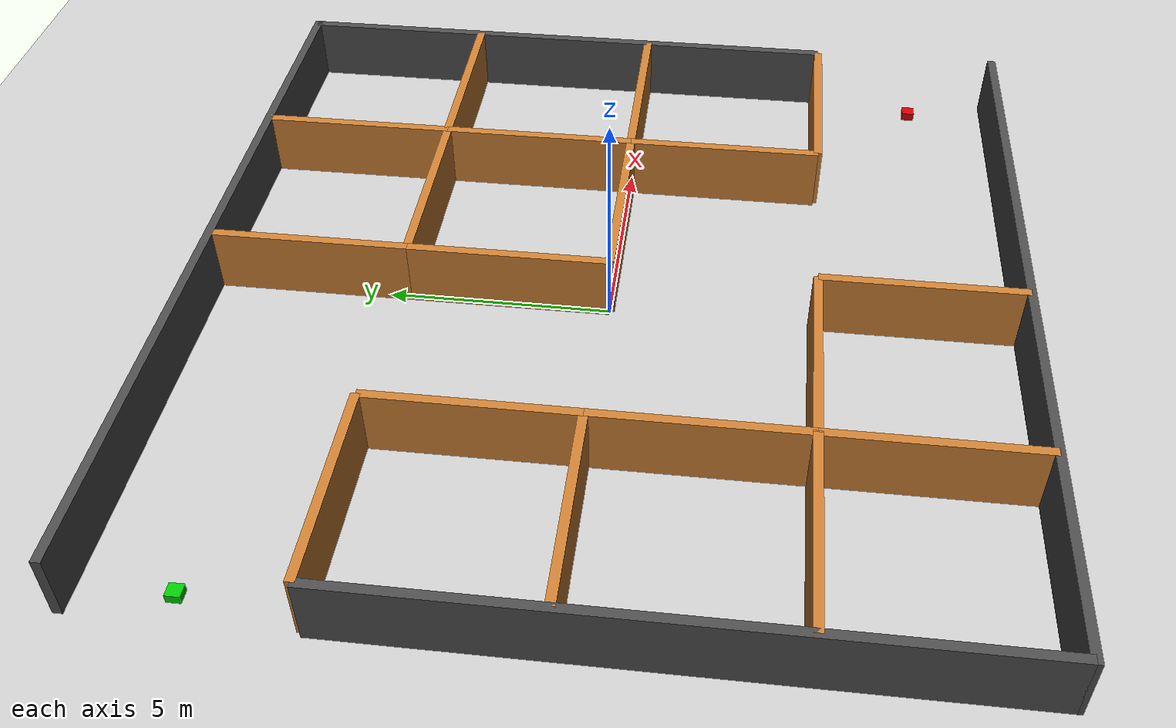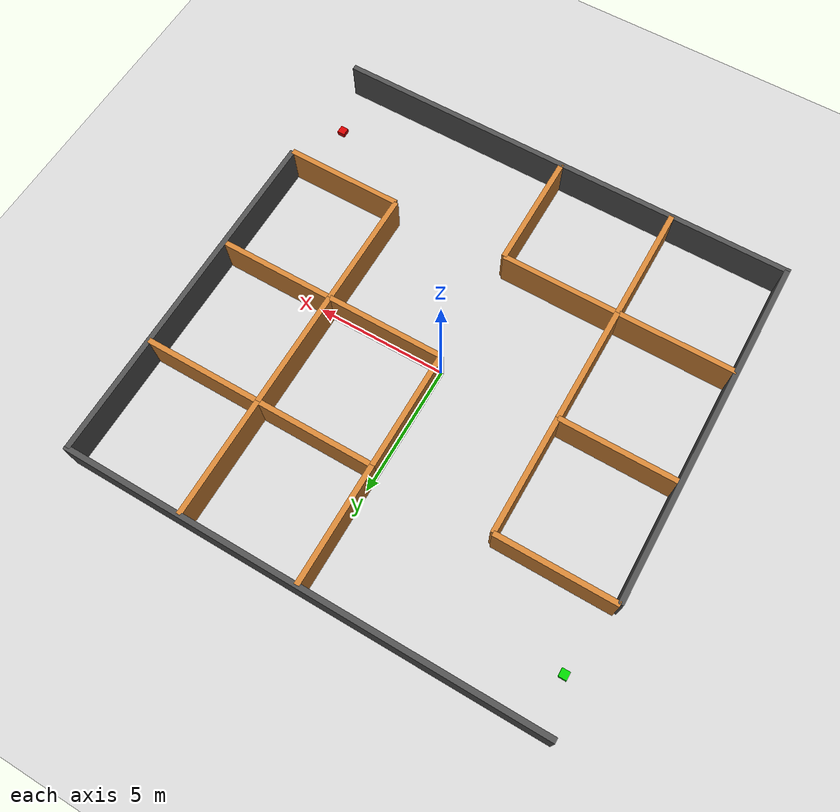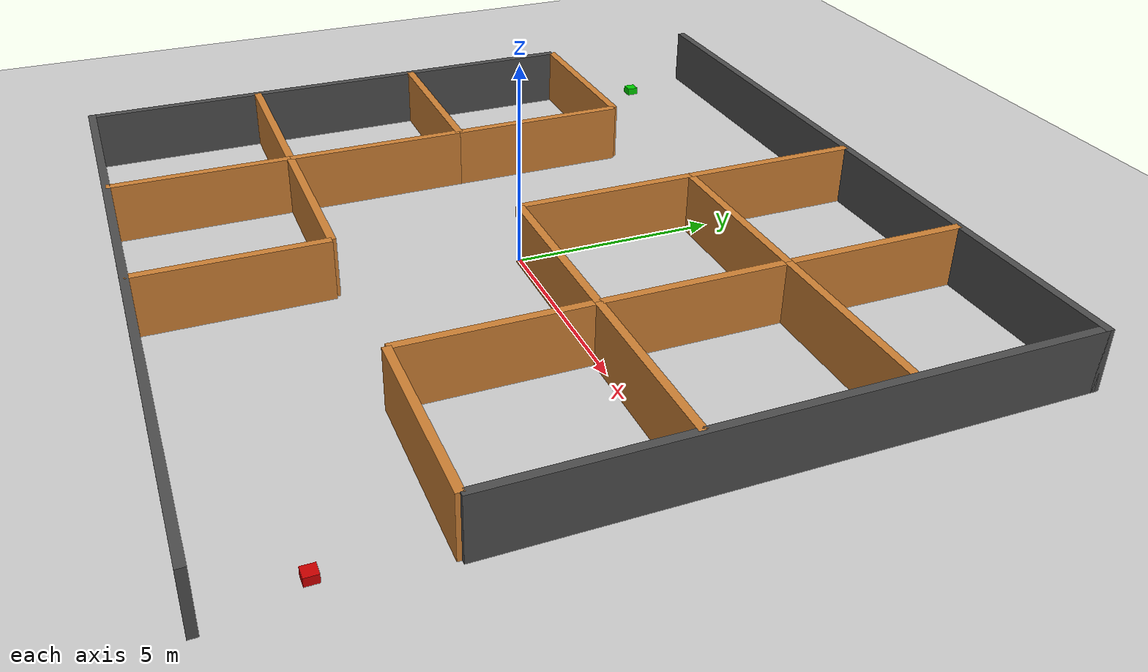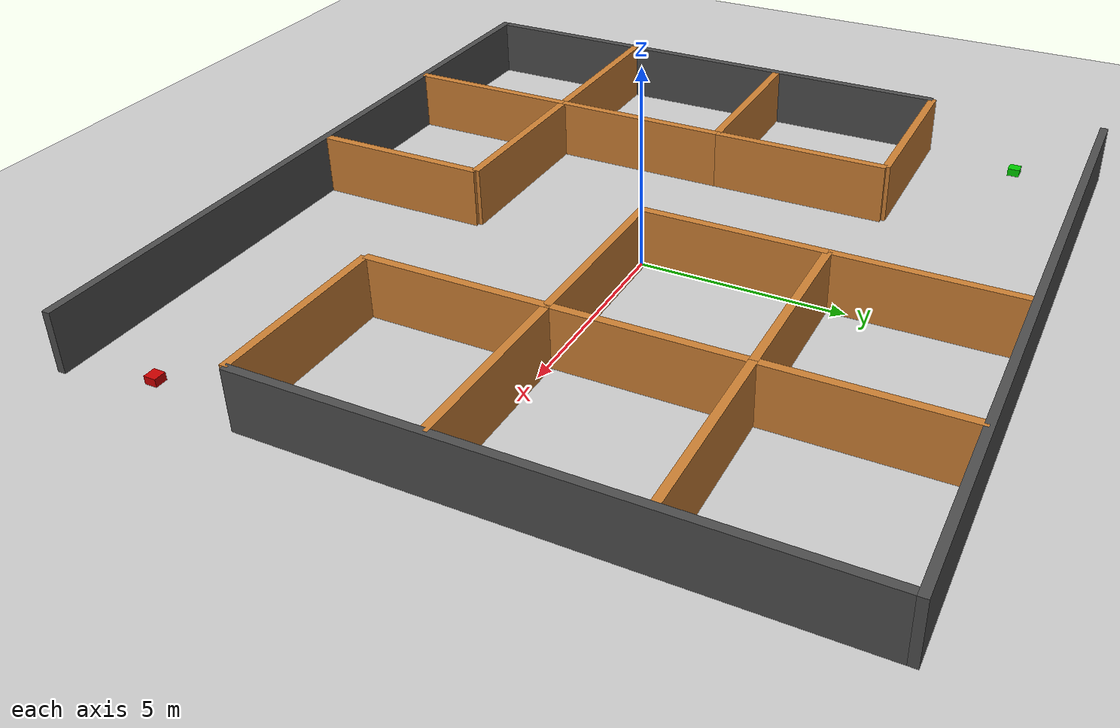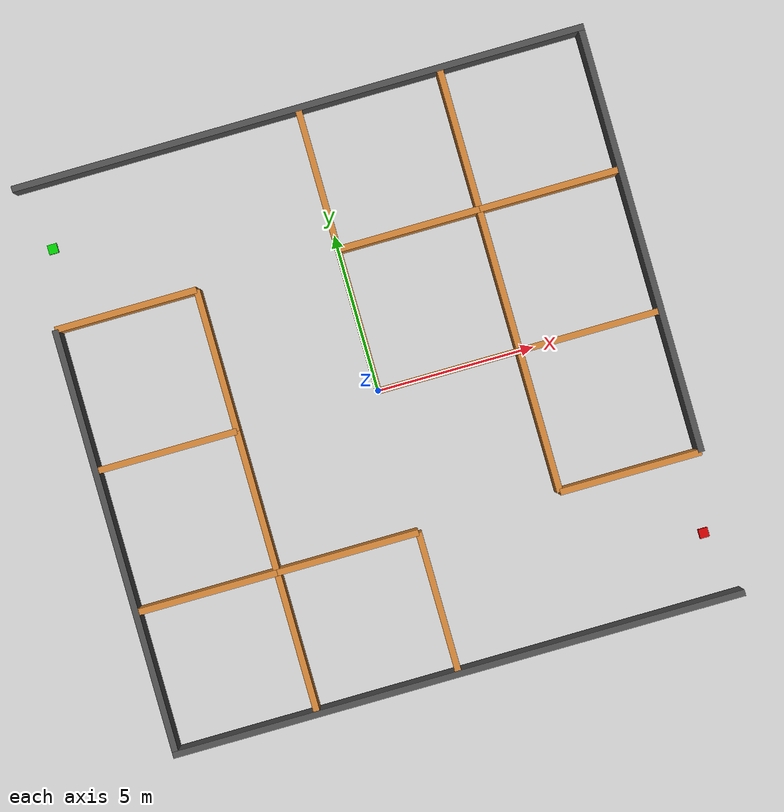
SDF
<?xml version="1.0" ?>
<sdf version="1.6">
  <world name="maze_world">

    <!-- ══════════════════  PHYSICS  ══════════════════ -->
    <physics name="default_physics" default="true" type="ode">
      <gravity>0 0 -9.8</gravity>
      <ode>
        <solver>
          <type>quick</type>
          <iters>50</iters>
          <sor>1.3</sor>
        </solver>
        <constraints>
          <cfm>0.0</cfm>
          <erp>0.2</erp>
          <contact_max_correcting_vel>100</contact_max_correcting_vel>
          <contact_surface_layer>0.001</contact_surface_layer>
        </constraints>
      </ode>
      <real_time_update_rate>1000</real_time_update_rate>
      <max_step_size>0.001</max_step_size>
    </physics>

    <!-- ══════════════════  SCENE  ════════════════════ -->
    <scene>
      <ambient>0.4 0.4 0.4 1</ambient>
      <background>0.7 0.7 0.7 1</background>
      <shadows>true</shadows>
    </scene>

    <!-- ══════════════════  SUN LIGHT  ════════════════ -->
    <light name="sun" type="directional">
      <cast_shadows>true</cast_shadows>
      <pose>0 0 10 0 -0 0</pose>
      <diffuse>0.9 0.9 0.9 1</diffuse>
      <specular>0.3 0.3 0.3 1</specular>
      <direction>-0.5 0.2 -0.9</direction>
      <attenuation>
        <range>1000</range>
        <constant>0.9</constant>
        <linear>0.01</linear>
        <quadratic>0.001</quadratic>
      </attenuation>
    </light>

    <!-- ══════════════════  GROUND PLANE  ═════════════ -->
    <model name="ground_plane">
      <static>true</static>
      <link name="link">
        <collision name="collision">
          <geometry>
            <plane>
              <normal>0 0 1</normal>
              <size>50 50</size>
            </plane>
          </geometry>
          <surface>
            <friction>
              <ode>
                <mu>1.0</mu>
                <mu2>1.0</mu2>
              </ode>
            </friction>
          </surface>
        </collision>
        <visual name="visual">
          <cast_shadows>false</cast_shadows>
          <geometry>
            <plane>
              <normal>0 0 1</normal>
              <size>50 50</size>
            </plane>
          </geometry>
          <material>
            <script>
              <uri>file://media/materials/scripts/gazebo.material</uri>
              <name>Gazebo/Grey</name>
            </script>
          </material>
        </visual>
      </link>
    </model>

    <!--                   MAZE WALLS                              -->
    <!-- Wall colours:                                             -->
    <!--   Outer boundary  →  dark grey  (0.3 0.3 0.3)            -->
    <!--   Inner walls     →  orange-tan (0.8 0.5 0.2)            -->

    <!-- ─────────────────  OUTER BOUNDARY  ─────────────────────── -->

    <!-- Top outer wall (full, y = +9) -->
    <model name="outer_wall_top">
      <static>true</static>
      <pose>0 9 0.75 0 0 0</pose>
      <link name="link">
        <collision name="col"><geometry><box><size>18.2 0.2 1.5</size></box></geometry></collision>
        <visual name="vis">
          <geometry><box><size>18.2 0.2 1.5</size></box></geometry>
          <material><ambient>0.3 0.3 0.3 1</ambient><diffuse>0.3 0.3 0.3 1</diffuse></material>
        </visual>
      </link>
    </model>

    <!-- Bottom outer wall (full, y = -9) -->
    <model name="outer_wall_bottom">
      <static>true</static>
      <pose>0 -9 0.75 0 0 0</pose>
      <link name="link">
        <collision name="col"><geometry><box><size>18.2 0.2 1.5</size></box></geometry></collision>
        <visual name="vis">
          <geometry><box><size>18.2 0.2 1.5</size></box></geometry>
          <material><ambient>0.3 0.3 0.3 1</ambient><diffuse>0.3 0.3 0.3 1</diffuse></material>
        </visual>
      </link>
    </model>

    <!-- Left outer wall – lower segment (y = -9 to y = 4.5)         -->
    <!-- Entry gap: y = 4.5 to y = 9  (top-left, 4.5 m opening)     -->
    <model name="outer_wall_left">
      <static>true</static>
      <pose>-9 -2.25 0.75 0 0 0</pose>
      <link name="link">
        <collision name="col"><geometry><box><size>0.2 13.5 1.5</size></box></geometry></collision>
        <visual name="vis">
          <geometry><box><size>0.2 13.5 1.5</size></box></geometry>
          <material><ambient>0.3 0.3 0.3 1</ambient><diffuse>0.3 0.3 0.3 1</diffuse></material>
        </visual>
      </link>
    </model>

    <!-- Right outer wall – upper segment (y = -4.5 to y = 9)        -->
    <!-- Exit gap:  y = -9 to y = -4.5  (bottom-right, 4.5 m opening) -->
    <model name="outer_wall_right">
      <static>true</static>
      <pose>9 2.25 0.75 0 0 0</pose>
      <link name="link">
        <collision name="col"><geometry><box><size>0.2 13.5 1.5</size></box></geometry></collision>
        <visual name="vis">
          <geometry><box><size>0.2 13.5 1.5</size></box></geometry>
          <material><ambient>0.3 0.3 0.3 1</ambient><diffuse>0.3 0.3 0.3 1</diffuse></material>
        </visual>
      </link>
    </model>

    <!-- ─────────────────  INNER HORIZONTAL WALLS  ──────────────── -->
    <!-- Naming: wall_hRC  =  horizontal wall below row R, at col C  -->
    <!-- Size: 4.5 m long (x), 0.2 m wide (y), 1.5 m tall (z)       -->

    <!-- Row-0/Row-1 boundary (y = 4.5) ─ blocks col 0 & cols 2-3   -->
    <model name="wall_h00">
      <static>true</static>
      <pose>-6.75 4.5 0.75 0 0 0</pose>
      <link name="link">
        <collision name="col"><geometry><box><size>4.5 0.2 1.5</size></box></geometry></collision>
        <visual name="vis">
          <geometry><box><size>4.5 0.2 1.5</size></box></geometry>
          <material><ambient>0.8 0.5 0.2 1</ambient><diffuse>0.8 0.5 0.2 1</diffuse></material>
        </visual>
      </link>
    </model>

    <model name="wall_h02">
      <static>true</static>
      <pose>2.25 4.5 0.75 0 0 0</pose>
      <link name="link">
        <collision name="col"><geometry><box><size>4.5 0.2 1.5</size></box></geometry></collision>
        <visual name="vis">
          <geometry><box><size>4.5 0.2 1.5</size></box></geometry>
          <material><ambient>0.8 0.5 0.2 1</ambient><diffuse>0.8 0.5 0.2 1</diffuse></material>
        </visual>
      </link>
    </model>

    <model name="wall_h03">
      <static>true</static>
      <pose>6.75 4.5 0.75 0 0 0</pose>
      <link name="link">
        <collision name="col"><geometry><box><size>4.5 0.2 1.5</size></box></geometry></collision>
        <visual name="vis">
          <geometry><box><size>4.5 0.2 1.5</size></box></geometry>
          <material><ambient>0.8 0.5 0.2 1</ambient><diffuse>0.8 0.5 0.2 1</diffuse></material>
        </visual>
      </link>
    </model>

    <!-- Row-1/Row-2 boundary (y = 0) ─ blocks col 0 & cols 2-3     -->
    <model name="wall_h10">
      <static>true</static>
      <pose>-6.75 0 0.75 0 0 0</pose>
      <link name="link">
        <collision name="col"><geometry><box><size>4.5 0.2 1.5</size></box></geometry></collision>
        <visual name="vis">
          <geometry><box><size>4.5 0.2 1.5</size></box></geometry>
          <material><ambient>0.8 0.5 0.2 1</ambient><diffuse>0.8 0.5 0.2 1</diffuse></material>
        </visual>
      </link>
    </model>

    <model name="wall_h12">
      <static>true</static>
      <pose>2.25 0 0.75 0 0 0</pose>
      <link name="link">
        <collision name="col"><geometry><box><size>4.5 0.2 1.5</size></box></geometry></collision>
        <visual name="vis">
          <geometry><box><size>4.5 0.2 1.5</size></box></geometry>
          <material><ambient>0.8 0.5 0.2 1</ambient><diffuse>0.8 0.5 0.2 1</diffuse></material>
        </visual>
      </link>
    </model>

    <model name="wall_h13">
      <static>true</static>
      <pose>6.75 0 0.75 0 0 0</pose>
      <link name="link">
        <collision name="col"><geometry><box><size>4.5 0.2 1.5</size></box></geometry></collision>
        <visual name="vis">
          <geometry><box><size>4.5 0.2 1.5</size></box></geometry>
          <material><ambient>0.8 0.5 0.2 1</ambient><diffuse>0.8 0.5 0.2 1</diffuse></material>
        </visual>
      </link>
    </model>

    <!-- Row-2/Row-3 boundary (y = -4.5) ─ blocks cols 0-1 & col 3  -->
    <model name="wall_h20">
      <static>true</static>
      <pose>-6.75 -4.5 0.75 0 0 0</pose>
      <link name="link">
        <collision name="col"><geometry><box><size>4.5 0.2 1.5</size></box></geometry></collision>
        <visual name="vis">
          <geometry><box><size>4.5 0.2 1.5</size></box></geometry>
          <material><ambient>0.8 0.5 0.2 1</ambient><diffuse>0.8 0.5 0.2 1</diffuse></material>
        </visual>
      </link>
    </model>

    <model name="wall_h21">
      <static>true</static>
      <pose>-2.25 -4.5 0.75 0 0 0</pose>
      <link name="link">
        <collision name="col"><geometry><box><size>4.5 0.2 1.5</size></box></geometry></collision>
        <visual name="vis">
          <geometry><box><size>4.5 0.2 1.5</size></box></geometry>
          <material><ambient>0.8 0.5 0.2 1</ambient><diffuse>0.8 0.5 0.2 1</diffuse></material>
        </visual>
      </link>
    </model>

    <model name="wall_h23">
      <static>true</static>
      <pose>6.75 -4.5 0.75 0 0 0</pose>
      <link name="link">
        <collision name="col"><geometry><box><size>4.5 0.2 1.5</size></box></geometry></collision>
        <visual name="vis">
          <geometry><box><size>4.5 0.2 1.5</size></box></geometry>
          <material><ambient>0.8 0.5 0.2 1</ambient><diffuse>0.8 0.5 0.2 1</diffuse></material>
        </visual>
      </link>
    </model>

    <!-- ─────────────────  INNER VERTICAL WALLS  ────────────────── -->
    <!-- Naming: wall_vRC  =  vertical wall right of col C, at row R -->
    <!-- Size: 0.2 m wide (x), 4.5 m long (y), 1.5 m tall (z)       -->

    <!-- Col-0/Col-1 boundary (x = -4.5) ─ rows 1 & 2               -->
    <model name="wall_v10">
      <static>true</static>
      <pose>-4.5 2.25 0.75 0 0 0</pose>
      <link name="link">
        <collision name="col"><geometry><box><size>0.2 4.5 1.5</size></box></geometry></collision>
        <visual name="vis">
          <geometry><box><size>0.2 4.5 1.5</size></box></geometry>
          <material><ambient>0.8 0.5 0.2 1</ambient><diffuse>0.8 0.5 0.2 1</diffuse></material>
        </visual>
      </link>
    </model>

    <model name="wall_v20">
      <static>true</static>
      <pose>-4.5 -2.25 0.75 0 0 0</pose>
      <link name="link">
        <collision name="col"><geometry><box><size>0.2 4.5 1.5</size></box></geometry></collision>
        <visual name="vis">
          <geometry><box><size>0.2 4.5 1.5</size></box></geometry>
          <material><ambient>0.8 0.5 0.2 1</ambient><diffuse>0.8 0.5 0.2 1</diffuse></material>
        </visual>
      </link>
    </model>

    <model name="wall_v30">
      <static>true</static>
      <pose>-4.5 -6.75 0.75 0 0 0</pose>
      <link name="link">
        <collision name="col"><geometry><box><size>0.2 4.5 1.5</size></box></geometry></collision>
        <visual name="vis">
          <geometry><box><size>0.2 4.5 1.5</size></box></geometry>
          <material><ambient>0.8 0.5 0.2 1</ambient><diffuse>0.8 0.5 0.2 1</diffuse></material>
        </visual>
      </link>
    </model>

    <!-- Col-1/Col-2 boundary (x = 0) ─ rows 0, 1 & 3               -->
    <model name="wall_v01">
      <static>true</static>
      <pose>0 6.75 0.75 0 0 0</pose>
      <link name="link">
        <collision name="col"><geometry><box><size>0.2 4.5 1.5</size></box></geometry></collision>
        <visual name="vis">
          <geometry><box><size>0.2 4.5 1.5</size></box></geometry>
          <material><ambient>0.8 0.5 0.2 1</ambient><diffuse>0.8 0.5 0.2 1</diffuse></material>
        </visual>
      </link>
    </model>

    <model name="wall_v11">
      <static>true</static>
      <pose>0 2.25 0.75 0 0 0</pose>
      <link name="link">
        <collision name="col"><geometry><box><size>0.2 4.5 1.5</size></box></geometry></collision>
        <visual name="vis">
          <geometry><box><size>0.2 4.5 1.5</size></box></geometry>
          <material><ambient>0.8 0.5 0.2 1</ambient><diffuse>0.8 0.5 0.2 1</diffuse></material>
        </visual>
      </link>
    </model>

    <model name="wall_v31">
      <static>true</static>
      <pose>0 -6.75 0.75 0 0 0</pose>
      <link name="link">
        <collision name="col"><geometry><box><size>0.2 4.5 1.5</size></box></geometry></collision>
        <visual name="vis">
          <geometry><box><size>0.2 4.5 1.5</size></box></geometry>
          <material><ambient>0.8 0.5 0.2 1</ambient><diffuse>0.8 0.5 0.2 1</diffuse></material>
        </visual>
      </link>
    </model>

    <!-- Col-2/Col-3 boundary (x = 4.5) ─ rows 0, 1 & 2              -->
    <model name="wall_v02">
      <static>true</static>
      <pose>4.5 6.75 0.75 0 0 0</pose>
      <link name="link">
        <collision name="col"><geometry><box><size>0.2 4.5 1.5</size></box></geometry></collision>
        <visual name="vis">
          <geometry><box><size>0.2 4.5 1.5</size></box></geometry>
          <material><ambient>0.8 0.5 0.2 1</ambient><diffuse>0.8 0.5 0.2 1</diffuse></material>
        </visual>
      </link>
    </model>

    <model name="wall_v12">
      <static>true</static>
      <pose>4.5 2.25 0.75 0 0 0</pose>
      <link name="link">
        <collision name="col"><geometry><box><size>0.2 4.5 1.5</size></box></geometry></collision>
        <visual name="vis">
          <geometry><box><size>0.2 4.5 1.5</size></box></geometry>
          <material><ambient>0.8 0.5 0.2 1</ambient><diffuse>0.8 0.5 0.2 1</diffuse></material>
        </visual>
      </link>
    </model>

    <model name="wall_v22">
      <static>true</static>
      <pose>4.5 -2.25 0.75 0 0 0</pose>
      <link name="link">
        <collision name="col"><geometry><box><size>0.2 4.5 1.5</size></box></geometry></collision>
        <visual name="vis">
          <geometry><box><size>0.2 4.5 1.5</size></box></geometry>
          <material><ambient>0.8 0.5 0.2 1</ambient><diffuse>0.8 0.5 0.2 1</diffuse></material>
        </visual>
      </link>
    </model>

    <!--    ROVER SPAWN MARKERS  (visual-only reference cubes)     -->
    <!--    Place your rover model near x=-8.5, y=7, z=0          -->

    <!-- Entry marker: small green box just outside the entry gap   -->
    <model name="marker_entry">
      <static>true</static>
      <pose>-8.5 7 0.1 0 0 0</pose>
      <link name="link">
        <visual name="vis">
          <geometry><box><size>0.3 0.3 0.2</size></box></geometry>
          <material><ambient>0.0 0.8 0.0 1</ambient><diffuse>0.0 0.8 0.0 1</diffuse></material>
        </visual>
      </link>
    </model>

    <!-- Exit marker: small red box just outside the exit gap        -->
    <model name="marker_exit">
      <static>true</static>
      <pose>8.5 -7 0.1 0 0 0</pose>
      <link name="link">
        <visual name="vis">
          <geometry><box><size>0.3 0.3 0.2</size></box></geometry>
          <material><ambient>0.8 0.0 0.0 1</ambient><diffuse>0.8 0.0 0.0 1</diffuse></material>
        </visual>
      </link>
    </model>

  </world>
</sdf>
